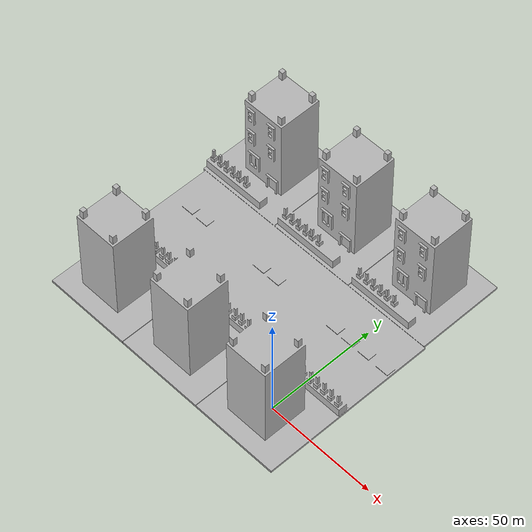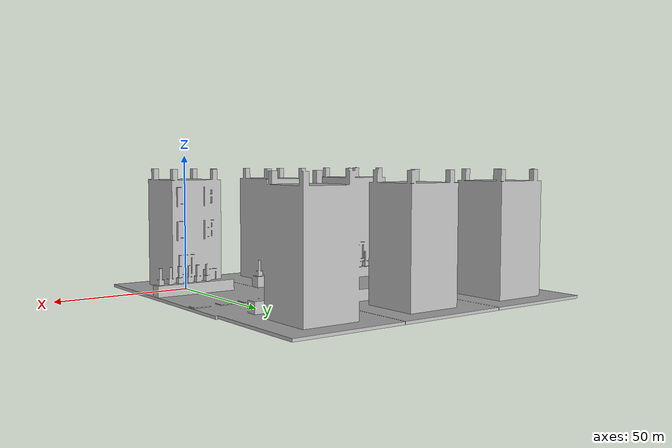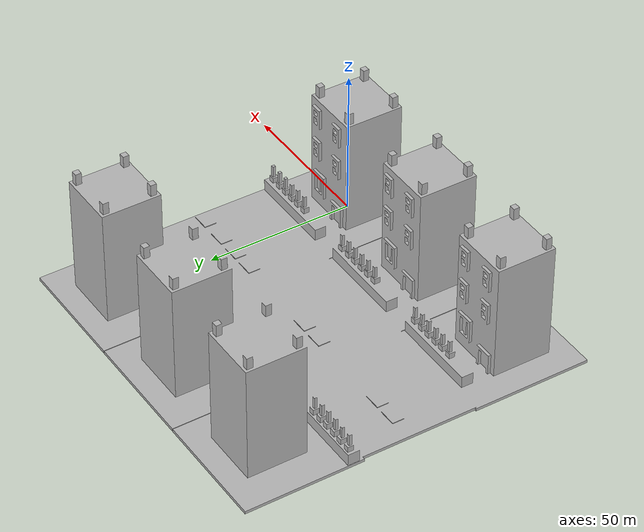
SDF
<?xml version="1.0" ?>
<sdf version="1.5">
  <model name="Drone World">
    <pose>0 0 0.75  0 0 0</pose>
    <static>false</static>
    <link name="link">
      <inertial>
        <mass>40.0</mass>
        <inertia>
          <ixx>1</ixx>
          <ixy>0</ixy>
          <ixz>0</ixz>
          <iyy>1</iyy>
          <iyz>0</iyz>
          <izz>1</izz>
        </inertia>
      </inertial>

      <collision name="collision">
        <geometry>
          <box>
              <size>1.20 0.80 1.50</size>
          </box>
        </geometry>
	<surface>
          <contact>
            <ode>
              <max_vel>0.1</max_vel>
              <min_depth>0.001</min_depth>
            </ode>
          </contact>
        </surface>
      </collision>
      <visual name="visual">
        <geometry>
          <mesh>
            <uri>model://drone_world/meshes/drone_world.dae</uri>
          </mesh>
	</geometry>
      </visual>
    </link>
  </model>
</sdf>
